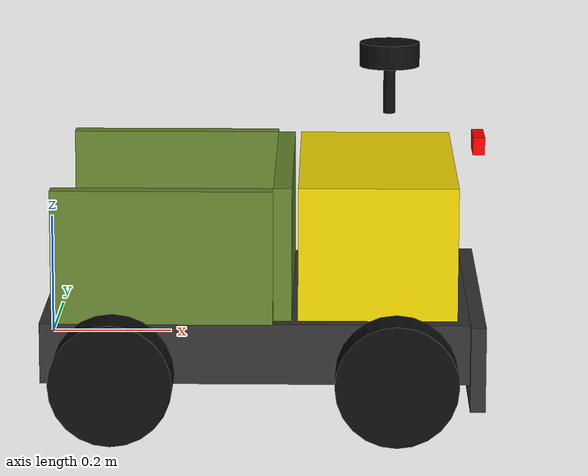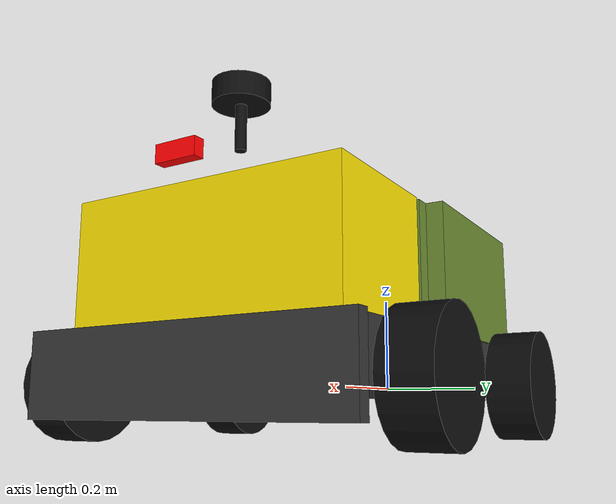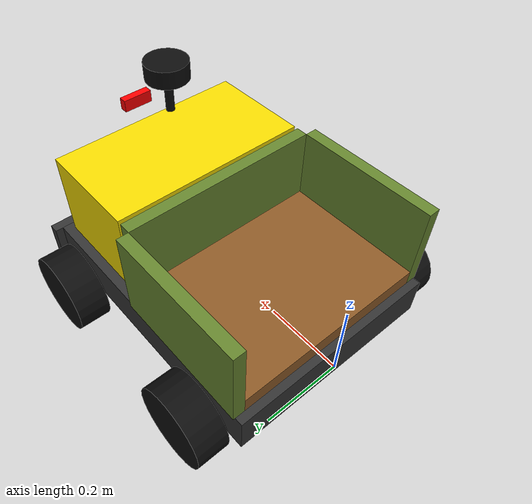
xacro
<?xml version="1.0"?>
<robot xmlns:xacro="http://www.ros.org/wiki/xacro" name="agribot_v2">

    <xacro:arg name="sim_mode" default="false" />

    <!-- Robot body: chassis, wheels, cargo bed + walls, body box, bumper -->
    <xacro:include filename="main_v2.xacro" />

    <!-- 2D LiDAR mounted on top of the body link -->
    <xacro:include filename="lidar.xacro" />

    <!-- Forward-facing camera mounted on the front of the body link -->
    <xacro:include filename="depth_camera.xacro" />

</robot>

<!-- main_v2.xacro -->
<robot xmlns:xacro="http://www.ros.org/wiki/xacro">

    <xacro:include filename="inertial_macros.xacro" />

    <!-- ═══════════════════════════════════════════════════════════
         PARAMETERS
         All dimensions in metres, masses in kg.
    ═══════════════════════════════════════════════════════════════ -->

    <!-- Main frame -->
    <xacro:property name="chassis_length" value="0.70" />
    <xacro:property name="chassis_width"  value="0.55" />
    <xacro:property name="chassis_height" value="0.10" />
    <xacro:property name="chassis_mass"   value="3.0"  />

    <!-- Wheels — larger radius for rough / sloped terrain -->
    <xacro:property name="wheel_radius"    value="0.10" />
    <xacro:property name="wheel_thickness" value="0.08" />
    <xacro:property name="wheel_mass"      value="0.30" />
    <!-- front axle x, half-track y (total track 0.66 m), chassis below axle -->
    <xacro:property name="wheel_offset_x"  value="0.58" />
    <xacro:property name="wheel_offset_y"  value="0.33" />
    <xacro:property name="wheel_offset_z"  value="0.02" />
    <!-- wheelbase: front x − rear x = 0.58 − 0.12 = 0.46 m -->
    <xacro:property name="wheelbase"       value="0.46" />

    <!-- Z of chassis top surface in base_link frame -->
    <xacro:property name="chassis_top_z"  value="${chassis_height - wheel_offset_z}" />

    <!-- Cargo bed (rear 36 cm, open at the back for loading) -->
    <xacro:property name="bed_x"      value="0.02" />
    <xacro:property name="bed_length" value="0.36" />
    <xacro:property name="bed_width"  value="0.50" />
    <xacro:property name="bed_height" value="0.04" />
    <xacro:property name="bed_mass"   value="0.80" />

    <!-- Retaining walls: front + left + right (keep cargo from sliding) -->
    <xacro:property name="wall_thickness" value="0.03" />
    <xacro:property name="wall_height"    value="0.22" />
    <xacro:property name="wall_mass"      value="0.15" />

    <!-- Electronics / motor-controller box (front section) -->
    <xacro:property name="body_x"      value="0.42" />
    <xacro:property name="body_length" value="0.26" />
    <xacro:property name="body_width"  value="0.50" />
    <xacro:property name="body_height" value="0.22" />
    <xacro:property name="body_mass"   value="2.00" />

    <!-- Front bumper bar -->
    <xacro:property name="bumper_thickness" value="0.025" />
    <xacro:property name="bumper_height"    value="0.14"  />
    <xacro:property name="bumper_mass"      value="0.20"  />

    <!-- ═══════════════════════════════════════════════════════════
         MATERIALS
    ═══════════════════════════════════════════════════════════════ -->

    <material name="black">        <color rgba="0.05 0.05 0.05 1" /></material>
    <material name="dark_gray">    <color rgba="0.20 0.20 0.20 1" /></material>
    <material name="gray">         <color rgba="0.50 0.50 0.50 1" /></material>
    <material name="white">        <color rgba="1.00 1.00 1.00 1" /></material>
    <material name="orange">       <color rgba="1.00 0.35 0.05 1" /></material>
    <material name="safety_yellow"><color rgba="0.95 0.85 0.00 1" /></material>
    <material name="olive_green">  <color rgba="0.40 0.52 0.18 1" /></material>
    <material name="brown">        <color rgba="0.55 0.35 0.15 1" /></material>
    <material name="blue">         <color rgba="0.10 0.20 0.80 1" /></material>
    <material name="red">          <color rgba="0.90 0.10 0.10 1" /></material>

    <xacro:macro name="wheel" params="name x_pos y_pos flip">
        <joint name="${name}_wheel_joint" type="continuous">
            <parent link="base_link" />
            <child  link="${name}_wheel" />
            <origin xyz="${x_pos} ${y_pos} 0" rpy="${flip * pi/2} 0 0" />
            <axis xyz="0 0 1" />
        </joint>

        <link name="${name}_wheel">
            <visual>
                <geometry>
                    <cylinder radius="${wheel_radius}" length="${wheel_thickness}" />
                </geometry>
                <material name="black" />
            </visual>
            <!-- Sphere collision: rolls smoothly on rough/sloped terrain -->
            <collision>
                <geometry>
                    <sphere radius="${wheel_radius}" />
                </geometry>
            </collision>
            <xacro:inertial_cylinder mass="${wheel_mass}"
                                     length="${wheel_thickness}"
                                     radius="${wheel_radius}">
                <origin xyz="0 0 0" rpy="0 0 0" />
            </xacro:inertial_cylinder>
        </link>

        <gazebo reference="${name}_wheel">
            <material>Gazebo/Black</material>
            <mu1>0.9</mu1>
            <mu2>0.9</mu2>
            <slip1>0.0</slip1>
            <slip2>0.0</slip2>
        </gazebo>
    </xacro:macro>

    <!-- ═══════════════════════════════════════════════════════════
         BASE LINK & FOOTPRINT
    ═══════════════════════════════════════════════════════════════ -->

    <link name="base_link" />

    <joint name="base_footprint_joint" type="fixed">
        <parent link="base_link" />
        <child  link="base_footprint" />
        <origin xyz="0 0 0" rpy="0 0 0" />
    </joint>
    <link name="base_footprint" />

    <joint name="chassis_joint" type="fixed">
        <parent link="base_link" />
        <child  link="chassis" />
        <origin xyz="0 0 ${-wheel_offset_z}" />
    </joint>

    <link name="chassis">
        <visual>
            <origin xyz="${chassis_length/2} 0 ${chassis_height/2}" />
            <geometry>
                <box size="${chassis_length} ${chassis_width} ${chassis_height}" />
            </geometry>
            <material name="dark_gray" />
        </visual>
        <collision>
            <origin xyz="${chassis_length/2} 0 ${chassis_height/2}" />
            <geometry>
                <box size="${chassis_length} ${chassis_width} ${chassis_height}" />
            </geometry>
        </collision>
        <xacro:inertial_box mass="${chassis_mass}"
                            x="${chassis_length}" y="${chassis_width}" z="${chassis_height}">
            <origin xyz="${chassis_length/2} 0 ${chassis_height/2}" rpy="0 0 0" />
        </xacro:inertial_box>
    </link>

    <gazebo reference="chassis">
        <material>Gazebo/DarkGrey</material>
    </gazebo>

    <xacro:wheel name="front_left"
                 x_pos="${wheel_offset_x}"
                 y_pos="${wheel_offset_y}"
                 flip="-1" />

    <xacro:wheel name="front_right"
                 x_pos="${wheel_offset_x}"
                 y_pos="${-wheel_offset_y}"
                 flip="1" />

    <xacro:wheel name="rear_left"
                 x_pos="${wheel_offset_x - wheelbase}"
                 y_pos="${wheel_offset_y}"
                 flip="-1" />

    <xacro:wheel name="rear_right"
                 x_pos="${wheel_offset_x - wheelbase}"
                 y_pos="${-wheel_offset_y}"
                 flip="1" />

    <!-- ═══════════════════════════════════════════════════════════
         CARGO BED  (x: 0.02 → 0.38 m, on top of chassis)
    ═══════════════════════════════════════════════════════════════ -->

    <joint name="cargo_bed_joint" type="fixed">
        <parent link="base_link" />
        <child  link="cargo_bed" />
        <origin xyz="${bed_x} 0 ${chassis_top_z}" />
    </joint>

    <link name="cargo_bed">
        <visual>
            <origin xyz="${bed_length/2} 0 ${bed_height/2}" />
            <geometry>
                <box size="${bed_length} ${bed_width} ${bed_height}" />
            </geometry>
            <material name="brown" />
        </visual>
        <collision>
            <origin xyz="${bed_length/2} 0 ${bed_height/2}" />
            <geometry>
                <box size="${bed_length} ${bed_width} ${bed_height}" />
            </geometry>
        </collision>
        <xacro:inertial_box mass="${bed_mass}"
                            x="${bed_length}" y="${bed_width}" z="${bed_height}">
            <origin xyz="${bed_length/2} 0 ${bed_height/2}" rpy="0 0 0" />
        </xacro:inertial_box>
    </link>

    <gazebo reference="cargo_bed">
        <material>Gazebo/Brown</material>
    </gazebo>

    <!-- ─── RETAINING WALL — FRONT
         Stops cargo from sliding forward when the robot descends the hill.
         Located at the junction between the cargo bed and the body box.         -->

    <joint name="cargo_wall_front_joint" type="fixed">
        <parent link="base_link" />
        <child  link="cargo_wall_front" />
        <origin xyz="${bed_x + bed_length} 0 ${chassis_top_z}" />
    </joint>

    <link name="cargo_wall_front">
        <visual>
            <origin xyz="${wall_thickness/2} 0 ${wall_height/2}" />
            <geometry>
                <box size="${wall_thickness} ${bed_width} ${wall_height}" />
            </geometry>
            <material name="olive_green" />
        </visual>
        <collision>
            <origin xyz="${wall_thickness/2} 0 ${wall_height/2}" />
            <geometry>
                <box size="${wall_thickness} ${bed_width} ${wall_height}" />
            </geometry>
        </collision>
        <xacro:inertial_box mass="${wall_mass}"
                            x="${wall_thickness}" y="${bed_width}" z="${wall_height}">
            <origin xyz="${wall_thickness/2} 0 ${wall_height/2}" rpy="0 0 0" />
        </xacro:inertial_box>
    </link>

    <gazebo reference="cargo_wall_front">
        <material>Gazebo/Green</material>
    </gazebo>

    <!-- ─── RETAINING WALL — LEFT -->

    <joint name="cargo_wall_left_joint" type="fixed">
        <parent link="base_link" />
        <child  link="cargo_wall_left" />
        <origin xyz="${bed_x} ${bed_width/2} ${chassis_top_z}" />
    </joint>

    <link name="cargo_wall_left">
        <visual>
            <origin xyz="${bed_length/2} ${wall_thickness/2} ${wall_height/2}" />
            <geometry>
                <box size="${bed_length} ${wall_thickness} ${wall_height}" />
            </geometry>
            <material name="olive_green" />
        </visual>
        <collision>
            <origin xyz="${bed_length/2} ${wall_thickness/2} ${wall_height/2}" />
            <geometry>
                <box size="${bed_length} ${wall_thickness} ${wall_height}" />
            </geometry>
        </collision>
        <xacro:inertial_box mass="${wall_mass}"
                            x="${bed_length}" y="${wall_thickness}" z="${wall_height}">
            <origin xyz="${bed_length/2} ${wall_thickness/2} ${wall_height/2}" rpy="0 0 0" />
        </xacro:inertial_box>
    </link>

    <gazebo reference="cargo_wall_left">
        <material>Gazebo/Green</material>
    </gazebo>

    <!-- ─── RETAINING WALL — RIGHT -->

    <joint name="cargo_wall_right_joint" type="fixed">
        <parent link="base_link" />
        <child  link="cargo_wall_right" />
        <origin xyz="${bed_x} ${-bed_width/2} ${chassis_top_z}" />
    </joint>

    <link name="cargo_wall_right">
        <visual>
            <origin xyz="${bed_length/2} ${-wall_thickness/2} ${wall_height/2}" />
            <geometry>
                <box size="${bed_length} ${wall_thickness} ${wall_height}" />
            </geometry>
            <material name="olive_green" />
        </visual>
        <collision>
            <origin xyz="${bed_length/2} ${-wall_thickness/2} ${wall_height/2}" />
            <geometry>
                <box size="${bed_length} ${wall_thickness} ${wall_height}" />
            </geometry>
        </collision>
        <xacro:inertial_box mass="${wall_mass}"
                            x="${bed_length}" y="${wall_thickness}" z="${wall_height}">
            <origin xyz="${bed_length/2} ${-wall_thickness/2} ${wall_height/2}" rpy="0 0 0" />
        </xacro:inertial_box>
    </link>

    <gazebo reference="cargo_wall_right">
        <material>Gazebo/Green</material>
    </gazebo>

    <joint name="body_joint" type="fixed">
        <parent link="base_link" />
        <child  link="body" />
        <origin xyz="${body_x} 0 ${chassis_top_z}" />
    </joint>

    <link name="body">
        <visual>
            <origin xyz="${body_length/2} 0 ${body_height/2}" />
            <geometry>
                <box size="${body_length} ${body_width} ${body_height}" />
            </geometry>
            <material name="safety_yellow" />
        </visual>
        <collision>
            <origin xyz="${body_length/2} 0 ${body_height/2}" />
            <geometry>
                <box size="${body_length} ${body_width} ${body_height}" />
            </geometry>
        </collision>
        <xacro:inertial_box mass="${body_mass}"
                            x="${body_length}" y="${body_width}" z="${body_height}">
            <origin xyz="${body_length/2} 0 ${body_height/2}" rpy="0 0 0" />
        </xacro:inertial_box>
    </link>

    <gazebo reference="body">
        <material>Gazebo/Yellow</material>
    </gazebo>

    <joint name="bumper_joint" type="fixed">
        <parent link="base_link" />
        <child  link="front_bumper" />
        <origin xyz="${chassis_length} 0 ${chassis_top_z}" />
    </joint>

    <link name="front_bumper">
        <visual>
            <origin xyz="${bumper_thickness/2} 0 ${-bumper_height/2}" />
            <geometry>
                <box size="${bumper_thickness} ${chassis_width + 0.04} ${bumper_height}" />
            </geometry>
            <material name="dark_gray" />
        </visual>
        <collision>
            <origin xyz="${bumper_thickness/2} 0 ${-bumper_height/2}" />
            <geometry>
                <box size="${bumper_thickness} ${chassis_width + 0.04} ${bumper_height}" />
            </geometry>
        </collision>
        <xacro:inertial_box mass="${bumper_mass}"
                            x="${bumper_thickness}"
                            y="${chassis_width + 0.04}"
                            z="${bumper_height}">
            <origin xyz="${bumper_thickness/2} 0 ${-bumper_height/2}" rpy="0 0 0" />
        </xacro:inertial_box>
    </link>

    <gazebo reference="front_bumper">
        <material>Gazebo/DarkGrey</material>
    </gazebo>

    <!-- ═══════════════════════════════════════════════════════════
         GAZEBO PLUGINS
    ═══════════════════════════════════════════════════════════════ -->

    <!-- Skid-steer drive — all four wheels driven -->
    <gazebo>
        <plugin filename="gz-sim-diff-drive-system"
                name="gz::sim::systems::DiffDrive">
            <topic>cmd_vel</topic>
            <child_frame_id>base_footprint</child_frame_id>
            <odom_topic>odom</odom_topic>
            <left_joint>front_left_wheel_joint</left_joint>
            <right_joint>front_right_wheel_joint</right_joint>
            <left_joint>rear_left_wheel_joint</left_joint>
            <right_joint>rear_right_wheel_joint</right_joint>
            <wheel_separation>${2 * wheel_offset_y}</wheel_separation>
            <wheel_radius>${wheel_radius}</wheel_radius>
            <max_linear_acceleration>1</max_linear_acceleration>
            <min_linear_acceleration>-1</min_linear_acceleration>
            <max_angular_acceleration>2</max_angular_acceleration>
            <min_angular_acceleration>-2</min_angular_acceleration>
            <max_linear_velocity>0.5</max_linear_velocity>
            <min_linear_velocity>-0.5</min_linear_velocity>
            <max_angular_velocity>1</max_angular_velocity>
            <min_angular_velocity>-1</min_angular_velocity>
        </plugin>
    </gazebo>

    <!-- Joint state publisher — feeds /joint_states for wheel odometry -->
    <gazebo>
        <plugin filename="gz-sim-joint-state-publisher-system"
                name="gz::sim::systems::JointStatePublisher">
            <topic>joint_states</topic>
            <update_rate>50</update_rate>
            <joint_name>front_left_wheel_joint</joint_name>
            <joint_name>front_right_wheel_joint</joint_name>
            <joint_name>rear_left_wheel_joint</joint_name>
            <joint_name>rear_right_wheel_joint</joint_name>
        </plugin>
    </gazebo>

</robot>

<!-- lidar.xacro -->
<robot xmlns:xacro="http://www.ros.org/wiki/xacro" >

    <joint name="laser_joint" type="fixed">
        <parent link="body"/>
        <child link="laser_frame"/>
        <origin xyz="0.15 0 0.4" rpy="0 0 0"/>
    </joint>

    <link name="laser_frame">
        <visual>
            <geometry>
                <cylinder radius="0.05" length="0.04"/>
            </geometry>
            <material name="black"/>
        </visual>
        <visual>
            <origin xyz="0 0 -0.05"/>
            <geometry>
                <cylinder radius="0.01" length="0.1"/>
            </geometry>
            <material name="black"/>
        </visual>
        <collision>
            <geometry>
                <cylinder radius="0.05" length="0.04"/>
            </geometry>
        </collision>
        <xacro:inertial_cylinder mass="0.1" length="0.04" radius="0.05">
            <origin xyz="0 0 0" rpy="0 0 0"/>
        </xacro:inertial_cylinder>
    </link>

    <gazebo reference="laser_frame">
        <material>Gazebo/Black</material>

        <sensor name="laser" type="gpu_lidar">
            <pose> 0 0 0 0 0 0 </pose>
            <visualize>false</visualize>
            <update_rate>10</update_rate>
            <lidar>
                <scan>
                    <horizontal>
                        <samples>360</samples>
                        <min_angle>-3.14</min_angle>
                        <max_angle>3.14</max_angle>
                    </horizontal>
                </scan>
                <range>
                    <min>0.3</min>
                    <max>12</max>
                </range>
            </lidar>
            <topic>scan</topic>
            <gz_frame_id>laser_frame</gz_frame_id>
        </sensor>
    </gazebo>

</robot>

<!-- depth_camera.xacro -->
<robot xmlns:xacro="http://www.ros.org/wiki/xacro">

  <!-- Fixed joint to mount camera on robot body -->
  <joint name="camera_joint" type="fixed">
    <parent link="body"/>
    <child link="camera_link"/>
    <origin xyz="0.3 0 0.25" rpy="0 0 0"/>
  </joint>

  <!-- Camera housing link -->
  <link name="camera_link">
    <visual>
      <geometry>
        <box size="0.02 0.075 0.03"/>
      </geometry>
      <material name="red">
        <color rgba="1 0 0 1"/>
      </material>
    </visual>
    <collision>
      <geometry>
        <box size="0.02 0.075 0.03"/>
      </geometry>
    </collision>
    <inertial>
      <mass value="0.1"/>
      <inertia ixx="1e-4" iyy="1e-4" izz="1e-4" ixy="0" ixz="0" iyz="0"/>
    </inertial>
  </link>

  <!-- Optical frame (REP-103: Z forward, X right, Y down) -->
  <joint name="camera_optical_joint" type="fixed">
    <parent link="camera_link"/>
    <child link="camera_optical_frame"/>
    <origin xyz="0 0 0" rpy="${-pi/2} 0 ${-pi/2}"/>
  </joint>

  <link name="camera_optical_frame"/>

  <gazebo reference="camera_link">
    <material>Gazebo/Black</material>

    <sensor name="camera" type="camera">
        <pose> 0 0 0 0 0 0 </pose>
        <visualize>true</visualize>
        <update_rate>10</update_rate>
        <camera>
            <camera_info_topic>camera/camera_info</camera_info_topic>
            <horizontal_fov>1.089</horizontal_fov>
            <image>
                <format>R8G8B8</format>
                <width>640</width>
                <height>480</height>
            </image>
            <clip>
                <near>0.05</near>
                <far>8.0</far>
            </clip>
        </camera>
        <topic>camera/image_raw</topic>
        <gz_frame_id>camera_optical_frame</gz_frame_id>
    </sensor>
</gazebo>

</robot>
